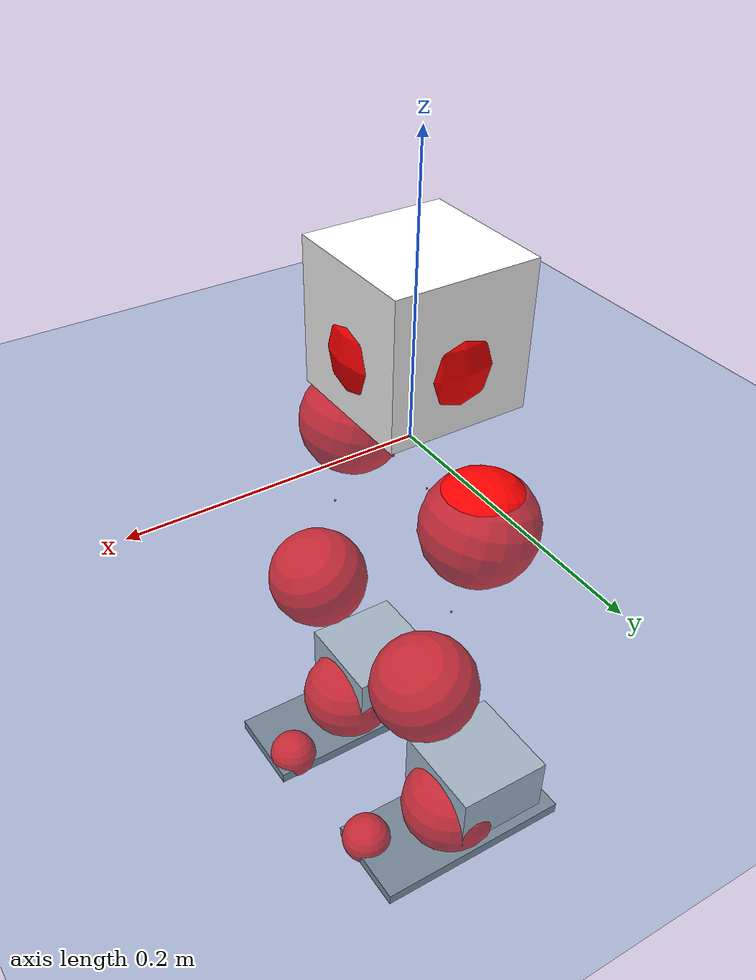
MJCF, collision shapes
<mujoco model="pi_12dof_release_v1">
  <compiler angle="radian" assetdir="assets" balanceinertia="true" inertiafromgeom="false"/>

  <option timestep="0.005" density="1.2" viscosity="2e-05"/>

  <size nkey="1"/>

  <visual>
    <quality shadowsize="8192"/>
    <map shadowclip="0.5"/>
  </visual>

  <default>
    <default class="/">
      <joint armature="0.01" damping="0.01" frictionloss="0.01"/>
      <geom contype="0" conaffinity="0" group="1" solref="-1000 -80"/>
      <site size="0.01 0.005 0.005" group="5"/>
      <general forcelimited="true" biastype="affine" gainprm="20" biasprm="0 -20 -0.5"/>
      <default class="foot">
        <geom size="0.0845 0.036 0.005" type="box" condim="6" group="4" priority="1" friction="0.9 0.2 0.2" solimp="0.015 1 0.005"/>
      </default>
      <default class="reward_collision_sphere">
        <geom group="5" rgba="1 0 0 1"/>
      </default>
    </default>
  </default>

  <asset>
    <texture type="skybox" colorspace="auto" name="//unnamed_texture_0" builtin="gradient" rgb1="0.95 0.95 0.95" rgb2="0.95 0.95 0.95" width="100" height="600"/>
    <texture type="2d" colorspace="auto" name="texplane" builtin="checker" rgb1="0.345 0.575 0.748" rgb2="0.345 0.575 0.748" markrgb="1 1 1" width="512" height="512"/>
    <material name="MatPlane" class="/" texture="texplane" texuniform="true" texrepeat="2 2" specular="0.9"/>
    <mesh name="baselink_1" class="/" file="baselink_1.STL"/>
    <mesh name="r_hip_pitch_link" class="/" file="r_hip_pitch_link.STL"/>
    <mesh name="r_hip_roll_link" class="/" file="r_hip_roll_link.STL"/>
    <mesh name="r_thigh_link" class="/" file="r_thigh_link.STL"/>
    <mesh name="r_calf_link" class="/" file="r_calf_link.STL"/>
    <mesh name="r_ankle_pitch_link" class="/" file="r_ankle_pitch_link.STL"/>
    <mesh name="r_ankle_roll_link" class="/" file="r_ankle_roll_link.STL"/>
    <mesh name="l_hip_pitch_link" class="/" file="l_hip_pitch_link.STL"/>
    <mesh name="l_hip_roll_link" class="/" file="l_hip_roll_link.STL"/>
    <mesh name="l_thigh_link" class="/" file="l_thigh_link.STL"/>
    <mesh name="l_calf_link" class="/" file="l_calf_link.STL"/>
    <mesh name="l_ankle_pitch_link" class="/" file="l_ankle_pitch_link.STL"/>
    <mesh name="l_ankle_roll_link" class="/" file="l_ankle_roll_link.STL"/>
  </asset>

  <worldbody>
    <geom name="floor" class="/" size="100 100 0.125" type="plane" group="0" material="MatPlane"/>
    <light name="toplight_shadow" class="/" pos="0 0 5" dir="0.0990148 0.0990148 -0.990148" type="directional" ambient="0.04 0.04 0.04" diffuse="0.55 0.55 0.55" specular="0.12 0.12 0.12"/>
    <light name="toplight_fill" class="/" pos="0 0 5" dir="0.0990148 0.0990148 -0.990148" type="directional" castshadow="false" ambient="0.04 0.04 0.04" diffuse="0.3 0.3 0.3" specular="0.08 0.08 0.08"/>
    <body name="trunk" pos="-0.0025356 -0.00252208 -0.000462651" quat="0.999999 -0.000483006 0.000685496 -0.00111347">
      <inertial pos="8.40572e-05 2.3422e-05 0.04044" quat="0.69606 0.0111989 0.00883697 0.717841" mass="2.10381" diaginertia="0.0120954 0.00614343 0.00455543"/>
      <joint name="//unnamed_joint_0" type="free"/>
      <geom name="//unnamed_geom_1" class="/" type="mesh" density="0" rgba="1 1 1 1" mesh="baselink_1"/>
      <geom name="//unnamed_geom_2" class="/" size="0.049747 0.049747 0.049747" pos="0 0 0.08102" type="box" rgba="1 1 1 1"/>
      <geom name="//unnamed_geom_3" class="reward_collision_sphere" size="0.0547218" pos="0 0 0.0708925"/>
      <site name="imu" class="/" pos="0.00242494 0.00106068 0.0029216" size="0.00994941"/>
      <camera name="track" class="/" pos="0 -1.85711 0" quat="0.707107 0.707107 0 0" mode="trackcom"/>
      <camera name="ego_camera" class="/" pos="0.0782639 0 0.182295" quat="-0.5 -0.5 0.5 0.5"/>
      <body name="r_hip_pitch_link" pos="-0.00169048 -0.0228834 -0.0320609" quat="0.99207 -0.000627275 -0.125685 0.000454989">
        <inertial pos="-0.00122619 -0.0541446 -0.00112972" quat="-0.0189188 0.70584 -0.0283367 0.707552" mass="0.381639" diaginertia="0.000140846 6.77121e-05 9.35345e-05"/>
        <joint name="r_hip_pitch_joint" class="/" pos="0 0 0" axis="0.00807745 -0.999965 -0.00237074" range="-1.74459 1.24538" armature="0.0100404" damping="0.00747755" frictionloss="0.0112284"/>
        <geom name="//unnamed_geom_4" class="/" type="mesh" density="0" rgba="0.75294 0.75294 0.75294 1" mesh="r_hip_pitch_link"/>
        <geom name="//unnamed_geom_5" class="/" size="0.00049747 0.00049747 0.00049747" type="box" rgba="0.75294 0.75294 0.75294 1"/>
        <body name="r_hip_roll_link" pos="0.000171404 -0.052635 0.000528976" quat="1 -1.13846e-05 8.88922e-06 -1.21256e-06">
          <inertial pos="0.000790895 -0.000638003 -0.0591769" quat="0.70651 -0.0782512 -0.0824482 0.698514" mass="0.386644" diaginertia="0.000416912 0.000190706 0.00013631"/>
          <joint name="r_hip_roll_joint" class="/" pos="0 0 0" axis="-0.999999 -0.000607186 0.0010605" stiffness="0.00965281" range="-0.176066 0.524259" armature="0.00848188" damping="0" frictionloss="0.0101506"/>
          <geom name="//unnamed_geom_6" class="/" type="mesh" density="0" rgba="0.75294 0.75294 0.75294 1" mesh="r_hip_roll_link"/>
          <geom name="//unnamed_geom_7" class="/" size="0.00049747 0.00049747 0.00049747" type="box" rgba="0.75294 0.75294 0.75294 1"/>
          <geom name="//unnamed_geom_8" class="reward_collision_sphere" size="0.0397976"/>
          <body name="r_thigh_link" pos="-0.00110094 -5.38222e-05 -0.0693764" quat="0.999999 -0.000745105 0.000240083 0.000871476">
            <inertial pos="0.00224312 0.00194451 -0.0506704" quat="0.74026 0.672192 -0.000240393 0.0131376" mass="0.110097" diaginertia="0.000154595 6.63961e-05 5.97699e-05"/>
            <joint name="r_thigh_joint" class="/" pos="0 0 0" axis="0.00713389 0.0095155 -0.999929" range="-0.303068 0.640858" armature="0.00853476" damping="0.0084054" frictionloss="0.00996797"/>
            <geom name="//unnamed_geom_9" class="/" type="mesh" density="0" rgba="0.75294 0.75294 0.75294 1" mesh="r_thigh_link"/>
            <geom name="//unnamed_geom_10" class="/" size="0.00049747 0.00049747 0.00049747" type="box" rgba="0.75294 0.75294 0.75294 1"/>
            <body name="r_calf_link" pos="-0.000935305 0.000279504 -0.0720825" quat="0.947661 -0.000551236 0.319276 -2.47254e-05">
              <inertial pos="0.0023519 -0.00123798 -0.0708469" quat="0.999985 -0.0025934 0.000850547 0.00473196" mass="0.845567" diaginertia="0.00455211 0.00252102 0.000186443"/>
              <joint name="r_calf_joint" class="/" pos="0 0 0" axis="-0.00112132 -0.999999 -0.000468386" stiffness="0.0111869" range="-1.6514 0.591987" armature="0.0111597" damping="0.000809811" frictionloss="0.0110718"/>
              <geom name="//unnamed_geom_11" class="/" type="mesh" density="0" rgba="0.75294 0.75294 0.75294 1" mesh="r_calf_link"/>
              <geom name="//unnamed_geom_12" class="/" size="0.00049747 0.00049747 0.00049747" type="box" rgba="0.75294 0.75294 0.75294 1"/>
              <geom name="//unnamed_geom_13" class="reward_collision_sphere" size="0.0397976"/>
              <body name="r_ankle_pitch_link" pos="-0.000915637 0.00145325 -0.138974" quat="0.980254 -0.000732513 -0.197742 -0.000601477">
                <inertial pos="0.00236897 0.00116809 0.000145081" quat="-0.000217286 0.70681 -0.00652962 0.707374" mass="0.168014" diaginertia="0.000380991 0.000151068 0.000122895"/>
                <joint name="r_ankle_pitch_joint" class="/" pos="0 0 0" axis="-0.0021696 -0.999925 0.012018" range="-1.35288 0.555471" armature="0.0105586" damping="0.00917674" frictionloss="0.00873323"/>
                <geom name="//unnamed_geom_14" class="/" type="mesh" density="0" rgba="0.75294 0.75294 0.75294 1" mesh="r_ankle_pitch_link"/>
                <geom name="//unnamed_geom_15" class="/" size="0.0388027 0.0397976 0.0248735" type="box" rgba="0.75294 0.75294 0.75294 1"/>
                <body name="r_ankle_roll_link" pos="0.0820526 0.00338169 -0.000169085" quat="1 -3.74552e-05 7.16582e-05 -3.55735e-05">
                  <inertial pos="-0.0229342 -7.27902e-06 -0.0142601" quat="0.56275 0.426564 0.434437 0.559124" mass="0.524534" diaginertia="0.00150007 0.000712878 0.000313168"/>
                  <joint name="r_ankle_roll_joint" class="/" pos="0 0 0" axis="-0.999957 -0.00399133 0.00833524" range="-0.13956 0.0950151" armature="0.0092918" damping="0" frictionloss="0.0102167"/>
                  <geom name="//unnamed_geom_16" class="/" type="mesh" density="0" rgba="0.75294 0.75294 0.75294 1" mesh="r_ankle_roll_link"/>
                  <geom name="//unnamed_geom_17" class="/" type="mesh" rgba="0.75294 0.75294 0.75294 1" mesh="r_ankle_roll_link"/>
                  <geom name="right_foot" class="foot" size="0.0885904 0.0355418 0.00464562" pos="-0.0532194 0 -0.044561"/>
                  <geom name="//unnamed_geom_19" class="reward_collision_sphere" size="0.0397976" pos="-0.0521759 0 -0.020255"/>
                  <geom name="//unnamed_geom_20" class="reward_collision_sphere" size="0.0198988" pos="0.0156528 0.0185711 -0.04051"/>
                  <geom name="//unnamed_geom_21" class="reward_collision_sphere" size="0.0198988" pos="-0.125222 0.0185711 -0.04051"/>
                  <site name="right_foot" class="foot" pos="-0.0532194 0 -0.044561" size="0.00994941"/>
                </body>
              </body>
            </body>
          </body>
        </body>
      </body>
      <body name="l_hip_pitch_link" pos="0.000724422 0.0211982 -0.0311977" quat="0.992123 -0.000604761 -0.125266 1.06481e-05">
        <inertial pos="0.00339949 0.0508258 0.000110695" quat="-0.0384384 0.705549 0.0298989 0.706986" mass="0.380006" diaginertia="0.000158806 7.50654e-05 0.000108417"/>
        <joint name="l_hip_pitch_joint" class="/" pos="0 0 0" axis="-0.000976214 0.999993 -0.00348607" range="-1.20807 1.76106" armature="0.0113073" damping="0" frictionloss="0.0103161"/>
        <geom name="//unnamed_geom_22" class="/" type="mesh" density="0" rgba="0.75294 0.75294 0.75294 1" mesh="l_hip_pitch_link"/>
        <geom name="//unnamed_geom_23" class="/" size="0.00049747 0.00049747 0.00049747" type="box" rgba="0.75294 0.75294 0.75294 1"/>
        <body name="l_hip_roll_link" pos="-0.00280327 0.0532703 0.00266194" quat="0.999999 -0.00107715 0.00067742 -0.000411043">
          <inertial pos="-0.0011754 0.000674401 -0.060921" quat="0.690516 -0.08192 -0.082481 0.713915" mass="0.368901" diaginertia="0.000409402 0.000184861 0.000136665"/>
          <joint name="l_hip_roll_joint" class="/" pos="0 0 0" axis="-0.999997 0.00241654 -0.000670298" stiffness="0.00849049" range="-0.494874 0.105821" armature="0.0113212" damping="0" frictionloss="0.0106223"/>
          <geom name="//unnamed_geom_24" class="/" type="mesh" density="0" rgba="0.75294 0.75294 0.75294 1" mesh="l_hip_roll_link"/>
          <geom name="//unnamed_geom_25" class="/" size="0.00049747 0.00049747 0.00049747" type="box" rgba="0.75294 0.75294 0.75294 1"/>
          <geom name="//unnamed_geom_26" class="reward_collision_sphere" size="0.0397976"/>
          <body name="l_thigh_link" pos="-0.000379077 -0.000744322 -0.0686156" quat="1 -5.29161e-06 -4.12407e-05 5.06124e-05">
            <inertial pos="0.000396799 -0.00178581 -0.0462897" quat="0.675743 0.737137 -0.00106015 0.00058897" mass="0.110507" diaginertia="0.000155208 6.58004e-05 6.18587e-05"/>
            <joint name="l_thigh_joint" class="/" pos="0 0 0" axis="0.00363916 -0.00439909 -0.999984" stiffness="7.89401e-05" range="-0.60215 0.322164" armature="0.0089928" damping="0.00257778" frictionloss="0.0104429"/>
            <geom name="//unnamed_geom_27" class="/" type="mesh" density="0" rgba="0.75294 0.75294 0.75294 1" mesh="l_thigh_link"/>
            <geom name="//unnamed_geom_28" class="/" size="0.00049747 0.00049747 0.00049747" type="box" rgba="0.75294 0.75294 0.75294 1"/>
            <body name="l_calf_link" pos="-0.000368392 -0.00268667 -0.0686308" quat="0.947802 0.000813413 0.318857 -0.00100985">
              <inertial pos="0.000419774 0.00563799 -0.0712521" quat="0.999947 -0.00777257 -0.00670765 -0.000197899" mass="0.79694" diaginertia="0.00443083 0.00246545 0.000183425"/>
              <joint name="l_calf_joint" class="/" pos="0 0 0" axis="-0.00541271 0.999985 -0.000549212" range="-0.627985 1.63259" armature="0.00879504" damping="0.0104746" frictionloss="0.0111856"/>
              <geom name="//unnamed_geom_29" class="/" type="mesh" density="0" rgba="0.75294 0.75294 0.75294 1" mesh="l_calf_link"/>
              <geom name="//unnamed_geom_30" class="/" size="0.00049747 0.00049747 0.00049747" type="box" rgba="0.75294 0.75294 0.75294 1"/>
              <geom name="//unnamed_geom_31" class="reward_collision_sphere" size="0.0397976"/>
              <body name="l_ankle_pitch_link" pos="0.000928791 -0.000160869 -0.144865" quat="0.980087 0.000469024 -0.198567 -0.000204062">
                <inertial pos="0.0050745 -0.00230842 0.000388428" quat="-0.00229501 0.707059 0.00253002 0.707146" mass="0.169952" diaginertia="0.000376037 0.000152363 0.000122835"/>
                <joint name="l_ankle_pitch_joint" class="/" pos="0 0 0" axis="0.00247307 0.999988 0.00427153" stiffness="0.00374677" range="-0.48295 1.30623" armature="0.00997768" damping="0.0094975" frictionloss="0.0103369"/>
                <geom name="//unnamed_geom_32" class="/" type="mesh" density="0" rgba="0.75294 0.75294 0.75294 1" mesh="l_ankle_pitch_link"/>
                <geom name="//unnamed_geom_33" class="/" size="0.0388027 0.0397976 0.0248735" type="box" rgba="0.75294 0.75294 0.75294 1"/>
                <body name="l_ankle_roll_link" pos="0.0768509 0.00308593 0.000108348" quat="1 -0.000134744 0.000193361 -0.000516563">
                  <inertial pos="-0.0229888 -0.000850943 -0.012995" quat="0.559747 0.432157 0.432439 0.559393" mass="0.509385" diaginertia="0.00138703 0.000667677 0.000301311"/>
                  <joint name="l_ankle_roll_joint" class="/" pos="0 0 0" axis="-0.999894 0.0131411 0.00632753" range="-0.143015 0.15297" armature="0.00988922" damping="0.0174994" frictionloss="0.00957751"/>
                  <geom name="//unnamed_geom_34" class="/" type="mesh" density="0" rgba="0.75294 0.75294 0.75294 1" mesh="l_ankle_roll_link"/>
                  <geom name="//unnamed_geom_35" class="/" type="mesh" rgba="0.75294 0.75294 0.75294 1" mesh="l_ankle_roll_link"/>
                  <geom name="left_foot" class="foot" size="0.0823489 0.0372515 0.00484538" pos="-0.0532194 0 -0.044561"/>
                  <geom name="//unnamed_geom_37" class="reward_collision_sphere" size="0.0397976" pos="-0.0521759 0 -0.020255"/>
                  <geom name="//unnamed_geom_38" class="reward_collision_sphere" size="0.0198988" pos="0.0156528 -0.0185711 -0.04051"/>
                  <geom name="//unnamed_geom_39" class="reward_collision_sphere" size="0.0198988" pos="-0.125222 -0.0185711 -0.04051"/>
                  <site name="left_foot" class="foot" pos="-0.0532194 0 -0.044561" size="0.00994941"/>
                </body>
              </body>
            </body>
          </body>
        </body>
      </body>
    </body>
  </worldbody>

  <contact>
    <pair class="/" geom1="floor" geom2="right_foot" name="//unnamed_contact_1"/>
    <pair class="/" geom1="floor" geom2="left_foot" name="//unnamed_contact_0"/>
  </contact>

  <actuator>
    <general name="r_hip_pitch_joint" class="/" joint="r_hip_pitch_joint" forcerange="-21.6867 21.6867" gainprm="19.4411" biasprm="0 -19.4411 -0.477684"/>
    <general name="r_hip_roll_joint" class="/" joint="r_hip_roll_joint" forcerange="-21.018 21.018" gainprm="19.4411" biasprm="0 -19.4411 -0.477684"/>
    <general name="r_thigh_joint" class="/" joint="r_thigh_joint" forcerange="-21.1338 21.1338" gainprm="19.4411" biasprm="0 -19.4411 -0.477684"/>
    <general name="r_calf_joint" class="/" joint="r_calf_joint" forcerange="-21.7122 21.7122" gainprm="19.4411" biasprm="0 -19.4411 -0.477684"/>
    <general name="r_ankle_pitch_joint" class="/" joint="r_ankle_pitch_joint" forcerange="-20.0585 20.0585" gainprm="19.4411" biasprm="0 -19.4411 -0.477684"/>
    <general name="r_ankle_roll_joint" class="/" joint="r_ankle_roll_joint" forcerange="-21.7179 21.7179" gainprm="19.4411" biasprm="0 -19.4411 -0.477684"/>
    <general name="l_hip_pitch_joint" class="/" joint="l_hip_pitch_joint" forcerange="-20.7901 20.7901" gainprm="19.4411" biasprm="0 -19.4411 -0.477684"/>
    <general name="l_hip_roll_joint" class="/" joint="l_hip_roll_joint" forcerange="-19.7372 19.7372" gainprm="19.4411" biasprm="0 -19.4411 -0.477684"/>
    <general name="l_thigh_joint" class="/" joint="l_thigh_joint" forcerange="-20.7621 20.7621" gainprm="19.4411" biasprm="0 -19.4411 -0.477684"/>
    <general name="l_calf_joint" class="/" joint="l_calf_joint" forcerange="-22.629 22.629" gainprm="19.4411" biasprm="0 -19.4411 -0.477684"/>
    <general name="l_ankle_pitch_joint" class="/" joint="l_ankle_pitch_joint" forcerange="-20.7981 20.7981" gainprm="19.4411" biasprm="0 -19.4411 -0.477684"/>
    <general name="l_ankle_roll_joint" class="/" joint="l_ankle_roll_joint" forcerange="-18.7992 18.7992" gainprm="19.4411" biasprm="0 -19.4411 -0.477684"/>
  </actuator>

  <sensor>
    <gyro site="imu" name="imu_angular_velocity"/>
    <velocimeter site="imu" name="imu_linear_velocity"/>
    <framelinvel objtype="site" objname="left_foot" name="left_foot_global_linear_velocity"/>
    <framelinvel objtype="site" objname="right_foot" name="right_foot_global_linear_velocity"/>
  </sensor>

  <keyframe>
    <key name="home" qpos="0 0 0.291 1 0 0 0 0.4 0 0 -0.8 0.4 0 -0.4 0 0 0.8 -0.4 0"/>
  </keyframe>
</mujoco>
